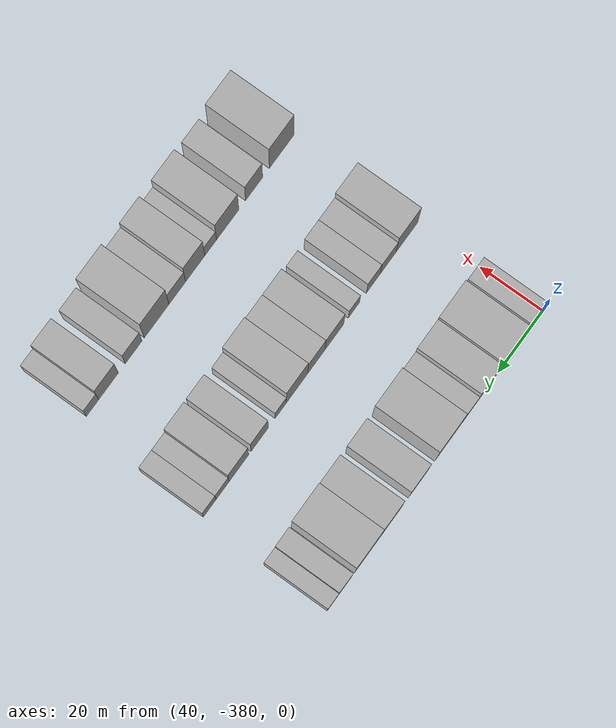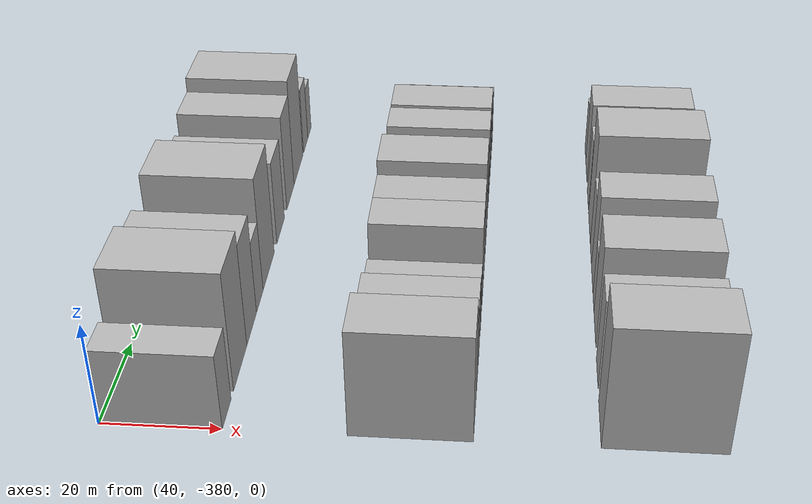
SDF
<sdf version="1.6">
 <world name="default">
  <model name="building_1">
   <static>1</static>
   <pose>50.0000 -376.4474 0 0.000000 0.000000 0.000000</pose>
   <link name="link">
    <pose>0 0 7.50 0 0 0</pose>
    <collision name="collision"><geometry><box><size>20.0000 7.1051 15.0000</size></box></geometry></collision>
    <visual name="visual">
     <cast_shadows>0</cast_shadows>
     <geometry><box><size>20.0000 7.1051 15.0000</size></box></geometry>
     <material>
      <script>
       <uri>model://HANNAS_wall/materials/scripts</uri>
       <uri>model://HANNAS_wall/materials/textures</uri>
       <name>vrc/HANNAS_wall</name>
      </script>
     </material>
    </visual>
   </link>
  </model>
  <model name="building_2">
   <static>1</static>
   <pose>50.0000 -365.0217 0 0.000000 0.000000 0.000000</pose>
   <link name="link">
    <pose>0 0 12.00 0 0 0</pose>
    <collision name="collision"><geometry><box><size>20.0000 11.7464 24.0000</size></box></geometry></collision>
    <visual name="visual">
     <cast_shadows>0</cast_shadows>
     <geometry><box><size>20.0000 11.7464 24.0000</size></box></geometry>
     <material>
      <script>
       <uri>model://HANNAS_wall/materials/scripts</uri>
       <uri>model://HANNAS_wall/materials/textures</uri>
       <name>vrc/HANNAS_wall</name>
      </script>
     </material>
    </visual>
   </link>
  </model>
  <model name="building_3">
   <static>1</static>
   <pose>50.0000 -354.5544 0 0.000000 0.000000 0.000000</pose>
   <link name="link">
    <pose>0 0 10.50 0 0 0</pose>
    <collision name="collision"><geometry><box><size>20.0000 9.1883 21.0000</size></box></geometry></collision>
    <visual name="visual">
     <cast_shadows>0</cast_shadows>
     <geometry><box><size>20.0000 9.1883 21.0000</size></box></geometry>
     <material>
      <script>
       <uri>model://HANNAS_wall/materials/scripts</uri>
       <uri>model://HANNAS_wall/materials/textures</uri>
       <name>vrc/HANNAS_wall</name>
      </script>
     </material>
    </visual>
   </link>
  </model>
  <model name="building_4">
   <static>1</static>
   <pose>50.0000 -346.6746 0 0.000000 0.000000 0.000000</pose>
   <link name="link">
    <pose>0 0 7.50 0 0 0</pose>
    <collision name="collision"><geometry><box><size>20.0000 6.5711 15.0000</size></box></geometry></collision>
    <visual name="visual">
     <cast_shadows>0</cast_shadows>
     <geometry><box><size>20.0000 6.5711 15.0000</size></box></geometry>
     <material>
      <script>
       <uri>model://HANNAS_wall/materials/scripts</uri>
       <uri>model://HANNAS_wall/materials/textures</uri>
       <name>vrc/HANNAS_wall</name>
      </script>
     </material>
    </visual>
   </link>
  </model>
  <model name="building_5">
   <static>1</static>
   <pose>50.0000 -337.4279 0 0.000000 0.000000 0.000000</pose>
   <link name="link">
    <pose>0 0 12.00 0 0 0</pose>
    <collision name="collision"><geometry><box><size>20.0000 11.9223 24.0000</size></box></geometry></collision>
    <visual name="visual">
     <cast_shadows>0</cast_shadows>
     <geometry><box><size>20.0000 11.9223 24.0000</size></box></geometry>
     <material>
      <script>
       <uri>model://HANNAS_wall/materials/scripts</uri>
       <uri>model://HANNAS_wall/materials/textures</uri>
       <name>vrc/HANNAS_wall</name>
      </script>
     </material>
    </visual>
   </link>
  </model>
  <model name="building_6">
   <static>1</static>
   <pose>50.0000 -324.0828 0 0.000000 0.000000 0.000000</pose>
   <link name="link">
    <pose>0 0 9.00 0 0 0</pose>
    <collision name="collision"><geometry><box><size>20.0000 8.7679 18.0000</size></box></geometry></collision>
    <visual name="visual">
     <cast_shadows>0</cast_shadows>
     <geometry><box><size>20.0000 8.7679 18.0000</size></box></geometry>
     <material>
      <script>
       <uri>model://HANNAS_wall/materials/scripts</uri>
       <uri>model://HANNAS_wall/materials/textures</uri>
       <name>vrc/HANNAS_wall</name>
      </script>
     </material>
    </visual>
   </link>
  </model>
  <model name="building_7">
   <static>1</static>
   <pose>50.0000 -312.1704 0 0.000000 0.000000 0.000000</pose>
   <link name="link">
    <pose>0 0 10.50 0 0 0</pose>
    <collision name="collision"><geometry><box><size>20.0000 9.0568 21.0000</size></box></geometry></collision>
    <visual name="visual">
     <cast_shadows>0</cast_shadows>
     <geometry><box><size>20.0000 9.0568 21.0000</size></box></geometry>
     <material>
      <script>
       <uri>model://HANNAS_wall/materials/scripts</uri>
       <uri>model://HANNAS_wall/materials/textures</uri>
       <name>vrc/HANNAS_wall</name>
      </script>
     </material>
    </visual>
   </link>
  </model>
  <model name="building_8">
   <static>1</static>
   <pose>50.0000 -301.7070 0 0.000000 0.000000 0.000000</pose>
   <link name="link">
    <pose>0 0 12.00 0 0 0</pose>
    <collision name="collision"><geometry><box><size>20.0000 11.8700 24.0000</size></box></geometry></collision>
    <visual name="visual">
     <cast_shadows>0</cast_shadows>
     <geometry><box><size>20.0000 11.8700 24.0000</size></box></geometry>
     <material>
      <script>
       <uri>model://HANNAS_wall/materials/scripts</uri>
       <uri>model://HANNAS_wall/materials/textures</uri>
       <name>vrc/HANNAS_wall</name>
      </script>
     </material>
    </visual>
   </link>
  </model>
  <model name="building_9">
   <static>1</static>
   <pose>50.0000 -291.7434 0 0.000000 0.000000 0.000000</pose>
   <link name="link">
    <pose>0 0 7.50 0 0 0</pose>
    <collision name="collision"><geometry><box><size>20.0000 6.0571 15.0000</size></box></geometry></collision>
    <visual name="visual">
     <cast_shadows>0</cast_shadows>
     <geometry><box><size>20.0000 6.0571 15.0000</size></box></geometry>
     <material>
      <script>
       <uri>model://HANNAS_wall/materials/scripts</uri>
       <uri>model://HANNAS_wall/materials/textures</uri>
       <name>vrc/HANNAS_wall</name>
      </script>
     </material>
    </visual>
   </link>
  </model>
  <model name="building_10">
   <static>1</static>
   <pose>50.0000 -286.2814 0 0.000000 0.000000 0.000000</pose>
   <link name="link">
    <pose>0 0 6.00 0 0 0</pose>
    <collision name="collision"><geometry><box><size>20.0000 4.8668 12.0000</size></box></geometry></collision>
    <visual name="visual">
     <cast_shadows>0</cast_shadows>
     <geometry><box><size>20.0000 4.8668 12.0000</size></box></geometry>
     <material>
      <script>
       <uri>model://HANNAS_wall/materials/scripts</uri>
       <uri>model://HANNAS_wall/materials/textures</uri>
       <name>vrc/HANNAS_wall</name>
      </script>
     </material>
    </visual>
   </link>
  </model>
  <model name="building_87">
   <static>1</static>
   <pose>90.0000 -375.1114 0 0.000000 0.000000 0.000000</pose>
   <link name="link">
    <pose>0 0 10.50 0 0 0</pose>
    <collision name="collision"><geometry><box><size>20.0000 9.7771 21.0000</size></box></geometry></collision>
    <visual name="visual">
     <cast_shadows>0</cast_shadows>
     <geometry><box><size>20.0000 9.7771 21.0000</size></box></geometry>
     <material>
      <script>
       <uri>model://HANNAS_wall/materials/scripts</uri>
       <uri>model://HANNAS_wall/materials/textures</uri>
       <name>vrc/HANNAS_wall</name>
      </script>
     </material>
    </visual>
   </link>
  </model>
  <model name="building_88">
   <static>1</static>
   <pose>90.0000 -366.6486 0 0.000000 0.000000 0.000000</pose>
   <link name="link">
    <pose>0 0 7.50 0 0 0</pose>
    <collision name="collision"><geometry><box><size>20.0000 7.1486 15.0000</size></box></geometry></collision>
    <visual name="visual">
     <cast_shadows>0</cast_shadows>
     <geometry><box><size>20.0000 7.1486 15.0000</size></box></geometry>
     <material>
      <script>
       <uri>model://HANNAS_wall/materials/scripts</uri>
       <uri>model://HANNAS_wall/materials/textures</uri>
       <name>vrc/HANNAS_wall</name>
      </script>
     </material>
    </visual>
   </link>
  </model>
  <model name="building_89">
   <static>1</static>
   <pose>90.0000 -359.9589 0 0.000000 0.000000 0.000000</pose>
   <link name="link">
    <pose>0 0 7.50 0 0 0</pose>
    <collision name="collision"><geometry><box><size>20.0000 6.2308 15.0000</size></box></geometry></collision>
    <visual name="visual">
     <cast_shadows>0</cast_shadows>
     <geometry><box><size>20.0000 6.2308 15.0000</size></box></geometry>
     <material>
      <script>
       <uri>model://HANNAS_wall/materials/scripts</uri>
       <uri>model://HANNAS_wall/materials/textures</uri>
       <name>vrc/HANNAS_wall</name>
      </script>
     </material>
    </visual>
   </link>
  </model>
  <model name="building_90">
   <static>1</static>
   <pose>90.0000 -351.3036 0 0.000000 0.000000 0.000000</pose>
   <link name="link">
    <pose>0 0 6.00 0 0 0</pose>
    <collision name="collision"><geometry><box><size>20.0000 5.0797 12.0000</size></box></geometry></collision>
    <visual name="visual">
     <cast_shadows>0</cast_shadows>
     <geometry><box><size>20.0000 5.0797 12.0000</size></box></geometry>
     <material>
      <script>
       <uri>model://HANNAS_wall/materials/scripts</uri>
       <uri>model://HANNAS_wall/materials/textures</uri>
       <name>vrc/HANNAS_wall</name>
      </script>
     </material>
    </visual>
   </link>
  </model>
  <model name="building_91">
   <static>1</static>
   <pose>90.0000 -342.6138 0 0.000000 0.000000 0.000000</pose>
   <link name="link">
    <pose>0 0 9.00 0 0 0</pose>
    <collision name="collision"><geometry><box><size>20.0000 8.2998 18.0000</size></box></geometry></collision>
    <visual name="visual">
     <cast_shadows>0</cast_shadows>
     <geometry><box><size>20.0000 8.2998 18.0000</size></box></geometry>
     <material>
      <script>
       <uri>model://HANNAS_wall/materials/scripts</uri>
       <uri>model://HANNAS_wall/materials/textures</uri>
       <name>vrc/HANNAS_wall</name>
      </script>
     </material>
    </visual>
   </link>
  </model>
  <model name="building_92">
   <static>1</static>
   <pose>90.0000 -334.6281 0 0.000000 0.000000 0.000000</pose>
   <link name="link">
    <pose>0 0 9.00 0 0 0</pose>
    <collision name="collision"><geometry><box><size>20.0000 7.6716 18.0000</size></box></geometry></collision>
    <visual name="visual">
     <cast_shadows>0</cast_shadows>
     <geometry><box><size>20.0000 7.6716 18.0000</size></box></geometry>
     <material>
      <script>
       <uri>model://HANNAS_wall/materials/scripts</uri>
       <uri>model://HANNAS_wall/materials/textures</uri>
       <name>vrc/HANNAS_wall</name>
      </script>
     </material>
    </visual>
   </link>
  </model>
  <model name="building_93">
   <static>1</static>
   <pose>90.0000 -326.0307 0 0.000000 0.000000 0.000000</pose>
   <link name="link">
    <pose>0 0 10.50 0 0 0</pose>
    <collision name="collision"><geometry><box><size>20.0000 9.5232 21.0000</size></box></geometry></collision>
    <visual name="visual">
     <cast_shadows>0</cast_shadows>
     <geometry><box><size>20.0000 9.5232 21.0000</size></box></geometry>
     <material>
      <script>
       <uri>model://HANNAS_wall/materials/scripts</uri>
       <uri>model://HANNAS_wall/materials/textures</uri>
       <name>vrc/HANNAS_wall</name>
      </script>
     </material>
    </visual>
   </link>
  </model>
  <model name="building_94">
   <static>1</static>
   <pose>90.0000 -318.7704 0 0.000000 0.000000 0.000000</pose>
   <link name="link">
    <pose>0 0 6.00 0 0 0</pose>
    <collision name="collision"><geometry><box><size>20.0000 4.9974 12.0000</size></box></geometry></collision>
    <visual name="visual">
     <cast_shadows>0</cast_shadows>
     <geometry><box><size>20.0000 4.9974 12.0000</size></box></geometry>
     <material>
      <script>
       <uri>model://HANNAS_wall/materials/scripts</uri>
       <uri>model://HANNAS_wall/materials/textures</uri>
       <name>vrc/HANNAS_wall</name>
      </script>
     </material>
    </visual>
   </link>
  </model>
  <model name="building_95">
   <static>1</static>
   <pose>90.0000 -309.4488 0 0.000000 0.000000 0.000000</pose>
   <link name="link">
    <pose>0 0 9.00 0 0 0</pose>
    <collision name="collision"><geometry><box><size>20.0000 7.6457 18.0000</size></box></geometry></collision>
    <visual name="visual">
     <cast_shadows>0</cast_shadows>
     <geometry><box><size>20.0000 7.6457 18.0000</size></box></geometry>
     <material>
      <script>
       <uri>model://HANNAS_wall/materials/scripts</uri>
       <uri>model://HANNAS_wall/materials/textures</uri>
       <name>vrc/HANNAS_wall</name>
      </script>
     </material>
    </visual>
   </link>
  </model>
  <model name="building_96">
   <static>1</static>
   <pose>90.0000 -300.3069 0 0.000000 0.000000 0.000000</pose>
   <link name="link">
    <pose>0 0 9.00 0 0 0</pose>
    <collision name="collision"><geometry><box><size>20.0000 8.6380 18.0000</size></box></geometry></collision>
    <visual name="visual">
     <cast_shadows>0</cast_shadows>
     <geometry><box><size>20.0000 8.6380 18.0000</size></box></geometry>
     <material>
      <script>
       <uri>model://HANNAS_wall/materials/scripts</uri>
       <uri>model://HANNAS_wall/materials/textures</uri>
       <name>vrc/HANNAS_wall</name>
      </script>
     </material>
    </visual>
   </link>
  </model>
  <model name="building_97">
   <static>1</static>
   <pose>90.0000 -293.1363 0 0.000000 0.000000 0.000000</pose>
   <link name="link">
    <pose>0 0 6.00 0 0 0</pose>
    <collision name="collision"><geometry><box><size>20.0000 5.7032 12.0000</size></box></geometry></collision>
    <visual name="visual">
     <cast_shadows>0</cast_shadows>
     <geometry><box><size>20.0000 5.7032 12.0000</size></box></geometry>
     <material>
      <script>
       <uri>model://HANNAS_wall/materials/scripts</uri>
       <uri>model://HANNAS_wall/materials/textures</uri>
       <name>vrc/HANNAS_wall</name>
      </script>
     </material>
    </visual>
   </link>
  </model>
  <model name="building_98">
   <static>1</static>
   <pose>90.0000 -287.4939 0 0.000000 0.000000 0.000000</pose>
   <link name="link">
    <pose>0 0 6.00 0 0 0</pose>
    <collision name="collision"><geometry><box><size>20.0000 5.5816 12.0000</size></box></geometry></collision>
    <visual name="visual">
     <cast_shadows>0</cast_shadows>
     <geometry><box><size>20.0000 5.5816 12.0000</size></box></geometry>
     <material>
      <script>
       <uri>model://HANNAS_wall/materials/scripts</uri>
       <uri>model://HANNAS_wall/materials/textures</uri>
       <name>vrc/HANNAS_wall</name>
      </script>
     </material>
    </visual>
   </link>
  </model>
  <model name="building_176">
   <static>1</static>
   <pose>130.0000 -374.4695 0 0.000000 0.000000 0.000000</pose>
   <link name="link">
    <pose>0 0 12.00 0 0 0</pose>
    <collision name="collision"><geometry><box><size>20.0000 11.0609 24.0000</size></box></geometry></collision>
    <visual name="visual">
     <cast_shadows>0</cast_shadows>
     <geometry><box><size>20.0000 11.0609 24.0000</size></box></geometry>
     <material>
      <script>
       <uri>model://HANNAS_wall/materials/scripts</uri>
       <uri>model://HANNAS_wall/materials/textures</uri>
       <name>vrc/HANNAS_wall</name>
      </script>
     </material>
    </visual>
   </link>
  </model>
  <model name="building_177">
   <static>1</static>
   <pose>130.0000 -362.1261 0 0.000000 0.000000 0.000000</pose>
   <link name="link">
    <pose>0 0 9.00 0 0 0</pose>
    <collision name="collision"><geometry><box><size>20.0000 7.6259 18.0000</size></box></geometry></collision>
    <visual name="visual">
     <cast_shadows>0</cast_shadows>
     <geometry><box><size>20.0000 7.6259 18.0000</size></box></geometry>
     <material>
      <script>
       <uri>model://HANNAS_wall/materials/scripts</uri>
       <uri>model://HANNAS_wall/materials/textures</uri>
       <name>vrc/HANNAS_wall</name>
      </script>
     </material>
    </visual>
   </link>
  </model>
  <model name="building_178">
   <static>1</static>
   <pose>130.0000 -350.3652 0 0.000000 0.000000 0.000000</pose>
   <link name="link">
    <pose>0 0 10.50 0 0 0</pose>
    <collision name="collision"><geometry><box><size>20.0000 9.8959 21.0000</size></box></geometry></collision>
    <visual name="visual">
     <cast_shadows>0</cast_shadows>
     <geometry><box><size>20.0000 9.8959 21.0000</size></box></geometry>
     <material>
      <script>
       <uri>model://HANNAS_wall/materials/scripts</uri>
       <uri>model://HANNAS_wall/materials/textures</uri>
       <name>vrc/HANNAS_wall</name>
      </script>
     </material>
    </visual>
   </link>
  </model>
  <model name="building_179">
   <static>1</static>
   <pose>130.0000 -342.8293 0 0.000000 0.000000 0.000000</pose>
   <link name="link">
    <pose>0 0 6.00 0 0 0</pose>
    <collision name="collision"><geometry><box><size>20.0000 5.1759 12.0000</size></box></geometry></collision>
    <visual name="visual">
     <cast_shadows>0</cast_shadows>
     <geometry><box><size>20.0000 5.1759 12.0000</size></box></geometry>
     <material>
      <script>
       <uri>model://HANNAS_wall/materials/scripts</uri>
       <uri>model://HANNAS_wall/materials/textures</uri>
       <name>vrc/HANNAS_wall</name>
      </script>
     </material>
    </visual>
   </link>
  </model>
  <model name="building_180">
   <static>1</static>
   <pose>130.0000 -335.9852 0 0.000000 0.000000 0.000000</pose>
   <link name="link">
    <pose>0 0 10.50 0 0 0</pose>
    <collision name="collision"><geometry><box><size>20.0000 8.5124 21.0000</size></box></geometry></collision>
    <visual name="visual">
     <cast_shadows>0</cast_shadows>
     <geometry><box><size>20.0000 8.5124 21.0000</size></box></geometry>
     <material>
      <script>
       <uri>model://HANNAS_wall/materials/scripts</uri>
       <uri>model://HANNAS_wall/materials/textures</uri>
       <name>vrc/HANNAS_wall</name>
      </script>
     </material>
    </visual>
   </link>
  </model>
  <model name="building_181">
   <static>1</static>
   <pose>130.0000 -328.0305 0 0.000000 0.000000 0.000000</pose>
   <link name="link">
    <pose>0 0 7.50 0 0 0</pose>
    <collision name="collision"><geometry><box><size>20.0000 7.3969 15.0000</size></box></geometry></collision>
    <visual name="visual">
     <cast_shadows>0</cast_shadows>
     <geometry><box><size>20.0000 7.3969 15.0000</size></box></geometry>
     <material>
      <script>
       <uri>model://HANNAS_wall/materials/scripts</uri>
       <uri>model://HANNAS_wall/materials/textures</uri>
       <name>vrc/HANNAS_wall</name>
      </script>
     </material>
    </visual>
   </link>
  </model>
  <model name="building_182">
   <static>1</static>
   <pose>130.0000 -318.8872 0 0.000000 0.000000 0.000000</pose>
   <link name="link">
    <pose>0 0 12.00 0 0 0</pose>
    <collision name="collision"><geometry><box><size>20.0000 10.8897 24.0000</size></box></geometry></collision>
    <visual name="visual">
     <cast_shadows>0</cast_shadows>
     <geometry><box><size>20.0000 10.8897 24.0000</size></box></geometry>
     <material>
      <script>
       <uri>model://HANNAS_wall/materials/scripts</uri>
       <uri>model://HANNAS_wall/materials/textures</uri>
       <name>vrc/HANNAS_wall</name>
      </script>
     </material>
    </visual>
   </link>
  </model>
  <model name="building_183">
   <static>1</static>
   <pose>130.0000 -308.7722 0 0.000000 0.000000 0.000000</pose>
   <link name="link">
    <pose>0 0 7.50 0 0 0</pose>
    <collision name="collision"><geometry><box><size>20.0000 7.3403 15.0000</size></box></geometry></collision>
    <visual name="visual">
     <cast_shadows>0</cast_shadows>
     <geometry><box><size>20.0000 7.3403 15.0000</size></box></geometry>
     <material>
      <script>
       <uri>model://HANNAS_wall/materials/scripts</uri>
       <uri>model://HANNAS_wall/materials/textures</uri>
       <name>vrc/HANNAS_wall</name>
      </script>
     </material>
    </visual>
   </link>
  </model>
  <model name="building_184">
   <static>1</static>
   <pose>130.0000 -297.7869 0 0.000000 0.000000 0.000000</pose>
   <link name="link">
    <pose>0 0 9.00 0 0 0</pose>
    <collision name="collision"><geometry><box><size>20.0000 8.6303 18.0000</size></box></geometry></collision>
    <visual name="visual">
     <cast_shadows>0</cast_shadows>
     <geometry><box><size>20.0000 8.6303 18.0000</size></box></geometry>
     <material>
      <script>
       <uri>model://HANNAS_wall/materials/scripts</uri>
       <uri>model://HANNAS_wall/materials/textures</uri>
       <name>vrc/HANNAS_wall</name>
      </script>
     </material>
    </visual>
   </link>
  </model>
  <model name="building_185">
   <static>1</static>
   <pose>130.0000 -290.7664 0 0.000000 0.000000 0.000000</pose>
   <link name="link">
    <pose>0 0 6.00 0 0 0</pose>
    <collision name="collision"><geometry><box><size>20.0000 5.4108 12.0000</size></box></geometry></collision>
    <visual name="visual">
     <cast_shadows>0</cast_shadows>
     <geometry><box><size>20.0000 5.4108 12.0000</size></box></geometry>
     <material>
      <script>
       <uri>model://HANNAS_wall/materials/scripts</uri>
       <uri>model://HANNAS_wall/materials/textures</uri>
       <name>vrc/HANNAS_wall</name>
      </script>
     </material>
    </visual>
   </link>
  </model>
 </world>
</sdf>
